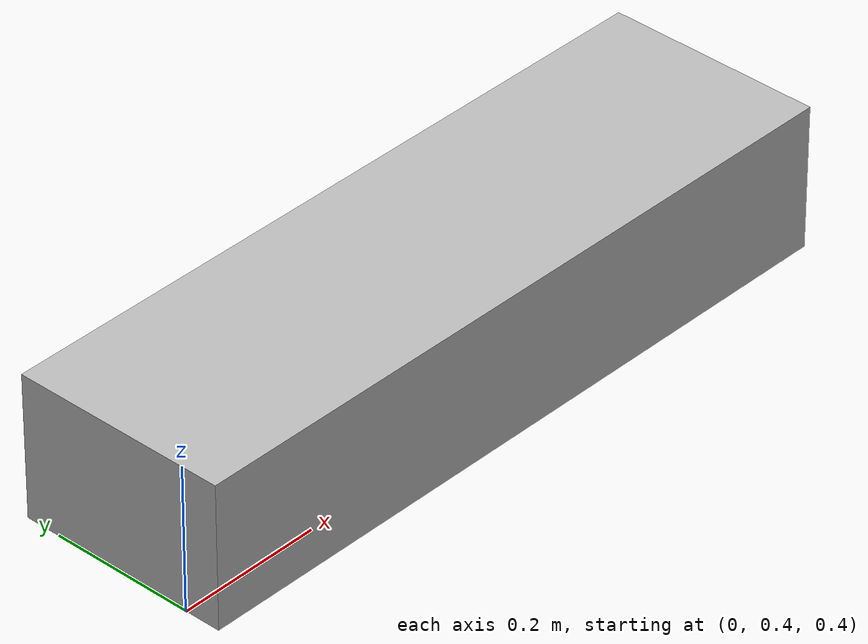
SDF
<?xml version='1.0'?>
<sdf version="1.4">
  <model name="wooden_crate">
    <pose>0.5 0.5 0.5 0 0 0</pose>
    <static>true</static>
    <link name="link">
      <collision name="collision">
        <geometry>
          <box>
            <size>1.0 0.3 0.2</size>
          </box>
        </geometry>
      </collision>
      <visual name="visual">
        <geometry>
          <box>
            <size>1.0 0.3 0.2</size>
          </box>
        </geometry>
      </visual>
    </link>
  </model>
</sdf>
